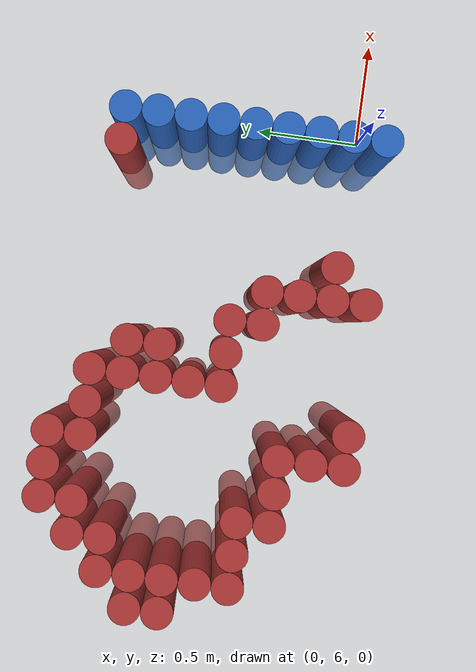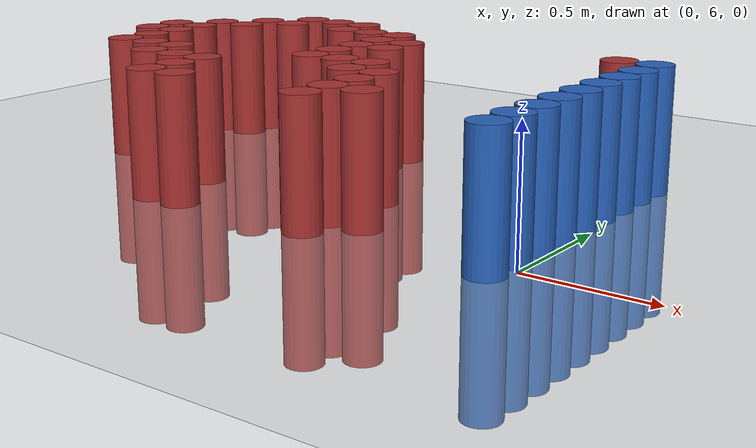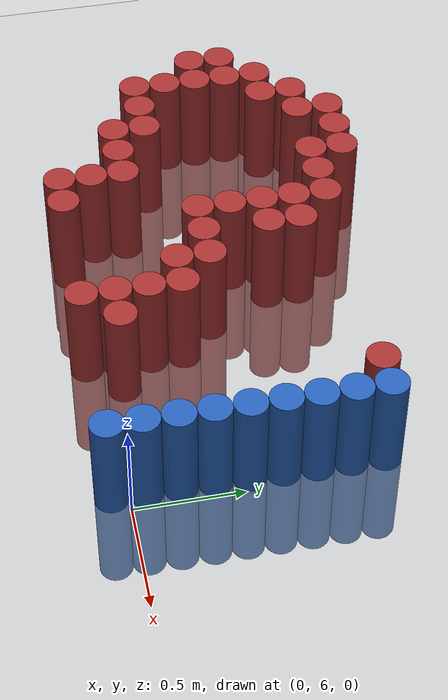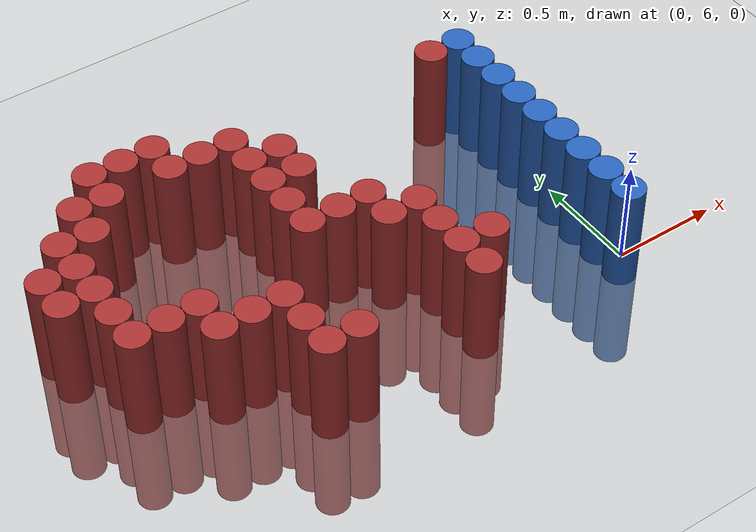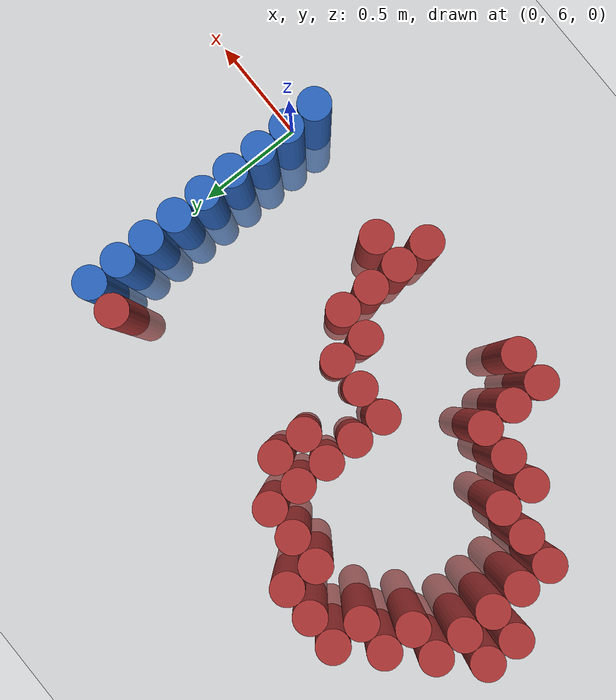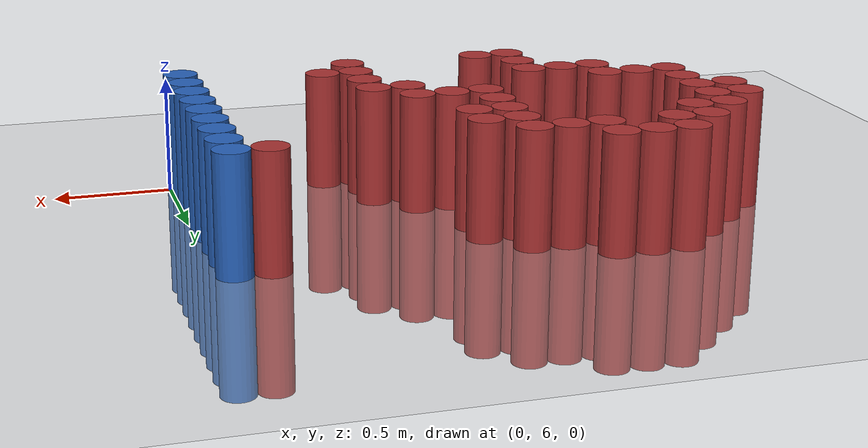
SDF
<sdf version="1.6">
 <world name="default">
  <model name="ground_plane">
   <static>1</static>
   <link name="link">
    <collision name="collision">
     <geometry><plane><normal>0 0 1</normal><size>100 100</size></plane></geometry>
     <surface><friction><ode><mu>100</mu><mu2>50</mu2></ode></friction></surface>
    </collision>
    <visual name="visual">
     <cast_shadows>0</cast_shadows>
     <geometry><plane><normal>0 0 1</normal><size>100 100</size></plane></geometry>
     <material>
      <script><uri>file://media/materials/scripts/gazebo.material</uri><name>Gazebo/Grey</name></script>
     </material>
    </visual>
   </link>
  </model>
  <model name="unit_cylinder_176">
   <static>1</static>
   <pose>-2.325000 6.675000 0.000000 0.000000 0.000000 0.000000</pose>
   <link name="link">
    <inertial>
     <mass>1</mass>
     <inertia><ixx>0.145833</ixx><ixy>0</ixy><ixz>0</ixz><iyy>0.145833</iyy><iyz>0</iyz><izz>0.125</izz></inertia>
    </inertial>
    <collision name="collision">
     <geometry><cylinder><radius>0.075000</radius><length>1</length></cylinder></geometry>
    </collision>
    <visual name="visual">
     <geometry><cylinder><radius>0.075000</radius><length>1</length></cylinder></geometry>
     <material>
      <ambient>0.648000 0.192000 0.192000 1</ambient>
      <diffuse>0.648000 0.192000 0.192000 1</diffuse>
     </material>
     <material>
      <script><name>Gazebo/Grey</name><uri>file://media/materials/scripts/gazebo.material</uri></script>
     </material>
    </visual>
   </link>
  </model>
  <model name="unit_cylinder_177">
   <static>1</static>
   <pose>-2.325000 6.825000 0.000000 0.000000 0.000000 0.000000</pose>
   <link name="link">
    <inertial>
     <mass>1</mass>
     <inertia><ixx>0.145833</ixx><ixy>0</ixy><ixz>0</ixz><iyy>0.145833</iyy><iyz>0</iyz><izz>0.125</izz></inertia>
    </inertial>
    <collision name="collision">
     <geometry><cylinder><radius>0.075000</radius><length>1</length></cylinder></geometry>
    </collision>
    <visual name="visual">
     <geometry><cylinder><radius>0.075000</radius><length>1</length></cylinder></geometry>
     <material>
      <ambient>0.648000 0.192000 0.192000 1</ambient>
      <diffuse>0.648000 0.192000 0.192000 1</diffuse>
     </material>
     <material>
      <script><name>Gazebo/Grey</name><uri>file://media/materials/scripts/gazebo.material</uri></script>
     </material>
    </visual>
   </link>
  </model>
  <model name="unit_cylinder_178">
   <static>1</static>
   <pose>-2.175000 6.375000 0.000000 0.000000 0.000000 0.000000</pose>
   <link name="link">
    <inertial>
     <mass>1</mass>
     <inertia><ixx>0.145833</ixx><ixy>0</ixy><ixz>0</ixz><iyy>0.145833</iyy><iyz>0</iyz><izz>0.125</izz></inertia>
    </inertial>
    <collision name="collision">
     <geometry><cylinder><radius>0.075000</radius><length>1</length></cylinder></geometry>
    </collision>
    <visual name="visual">
     <geometry><cylinder><radius>0.075000</radius><length>1</length></cylinder></geometry>
     <material>
      <ambient>0.648000 0.192000 0.192000 1</ambient>
      <diffuse>0.648000 0.192000 0.192000 1</diffuse>
     </material>
     <material>
      <script><name>Gazebo/Grey</name><uri>file://media/materials/scripts/gazebo.material</uri></script>
     </material>
    </visual>
   </link>
  </model>
  <model name="unit_cylinder_179">
   <static>1</static>
   <pose>-2.175000 6.525000 0.000000 0.000000 0.000000 0.000000</pose>
   <link name="link">
    <inertial>
     <mass>1</mass>
     <inertia><ixx>0.145833</ixx><ixy>0</ixy><ixz>0</ixz><iyy>0.145833</iyy><iyz>0</iyz><izz>0.125</izz></inertia>
    </inertial>
    <collision name="collision">
     <geometry><cylinder><radius>0.075000</radius><length>1</length></cylinder></geometry>
    </collision>
    <visual name="visual">
     <geometry><cylinder><radius>0.075000</radius><length>1</length></cylinder></geometry>
     <material>
      <ambient>0.648000 0.192000 0.192000 1</ambient>
      <diffuse>0.648000 0.192000 0.192000 1</diffuse>
     </material>
     <material>
      <script><name>Gazebo/Grey</name><uri>file://media/materials/scripts/gazebo.material</uri></script>
     </material>
    </visual>
   </link>
  </model>
  <model name="unit_cylinder_180">
   <static>1</static>
   <pose>-2.175000 6.675000 0.000000 0.000000 0.000000 0.000000</pose>
   <link name="link">
    <inertial>
     <mass>1</mass>
     <inertia><ixx>0.145833</ixx><ixy>0</ixy><ixz>0</ixz><iyy>0.145833</iyy><iyz>0</iyz><izz>0.125</izz></inertia>
    </inertial>
    <collision name="collision">
     <geometry><cylinder><radius>0.075000</radius><length>1</length></cylinder></geometry>
    </collision>
    <visual name="visual">
     <geometry><cylinder><radius>0.075000</radius><length>1</length></cylinder></geometry>
     <material>
      <ambient>0.648000 0.192000 0.192000 1</ambient>
      <diffuse>0.648000 0.192000 0.192000 1</diffuse>
     </material>
     <material>
      <script><name>Gazebo/Grey</name><uri>file://media/materials/scripts/gazebo.material</uri></script>
     </material>
    </visual>
   </link>
  </model>
  <model name="unit_cylinder_181">
   <static>1</static>
   <pose>-2.175000 6.825000 0.000000 0.000000 0.000000 0.000000</pose>
   <link name="link">
    <inertial>
     <mass>1</mass>
     <inertia><ixx>0.145833</ixx><ixy>0</ixy><ixz>0</ixz><iyy>0.145833</iyy><iyz>0</iyz><izz>0.125</izz></inertia>
    </inertial>
    <collision name="collision">
     <geometry><cylinder><radius>0.075000</radius><length>1</length></cylinder></geometry>
    </collision>
    <visual name="visual">
     <geometry><cylinder><radius>0.075000</radius><length>1</length></cylinder></geometry>
     <material>
      <ambient>0.648000 0.192000 0.192000 1</ambient>
      <diffuse>0.648000 0.192000 0.192000 1</diffuse>
     </material>
     <material>
      <script><name>Gazebo/Grey</name><uri>file://media/materials/scripts/gazebo.material</uri></script>
     </material>
    </visual>
   </link>
  </model>
  <model name="unit_cylinder_182">
   <static>1</static>
   <pose>-2.175000 6.975000 0.000000 0.000000 0.000000 0.000000</pose>
   <link name="link">
    <inertial>
     <mass>1</mass>
     <inertia><ixx>0.145833</ixx><ixy>0</ixy><ixz>0</ixz><iyy>0.145833</iyy><iyz>0</iyz><izz>0.125</izz></inertia>
    </inertial>
    <collision name="collision">
     <geometry><cylinder><radius>0.075000</radius><length>1</length></cylinder></geometry>
    </collision>
    <visual name="visual">
     <geometry><cylinder><radius>0.075000</radius><length>1</length></cylinder></geometry>
     <material>
      <ambient>0.648000 0.192000 0.192000 1</ambient>
      <diffuse>0.648000 0.192000 0.192000 1</diffuse>
     </material>
     <material>
      <script><name>Gazebo/Grey</name><uri>file://media/materials/scripts/gazebo.material</uri></script>
     </material>
    </visual>
   </link>
  </model>
  <model name="unit_cylinder_183">
   <static>1</static>
   <pose>-2.025000 6.375000 0.000000 0.000000 0.000000 0.000000</pose>
   <link name="link">
    <inertial>
     <mass>1</mass>
     <inertia><ixx>0.145833</ixx><ixy>0</ixy><ixz>0</ixz><iyy>0.145833</iyy><iyz>0</iyz><izz>0.125</izz></inertia>
    </inertial>
    <collision name="collision">
     <geometry><cylinder><radius>0.075000</radius><length>1</length></cylinder></geometry>
    </collision>
    <visual name="visual">
     <geometry><cylinder><radius>0.075000</radius><length>1</length></cylinder></geometry>
     <material>
      <ambient>0.648000 0.192000 0.192000 1</ambient>
      <diffuse>0.648000 0.192000 0.192000 1</diffuse>
     </material>
     <material>
      <script><name>Gazebo/Grey</name><uri>file://media/materials/scripts/gazebo.material</uri></script>
     </material>
    </visual>
   </link>
  </model>
  <model name="unit_cylinder_184">
   <static>1</static>
   <pose>-2.025000 6.975000 0.000000 0.000000 0.000000 0.000000</pose>
   <link name="link">
    <inertial>
     <mass>1</mass>
     <inertia><ixx>0.145833</ixx><ixy>0</ixy><ixz>0</ixz><iyy>0.145833</iyy><iyz>0</iyz><izz>0.125</izz></inertia>
    </inertial>
    <collision name="collision">
     <geometry><cylinder><radius>0.075000</radius><length>1</length></cylinder></geometry>
    </collision>
    <visual name="visual">
     <geometry><cylinder><radius>0.075000</radius><length>1</length></cylinder></geometry>
     <material>
      <ambient>0.648000 0.192000 0.192000 1</ambient>
      <diffuse>0.648000 0.192000 0.192000 1</diffuse>
     </material>
     <material>
      <script><name>Gazebo/Grey</name><uri>file://media/materials/scripts/gazebo.material</uri></script>
     </material>
    </visual>
   </link>
  </model>
  <model name="unit_cylinder_185">
   <static>1</static>
   <pose>-2.025000 7.125000 0.000000 0.000000 0.000000 0.000000</pose>
   <link name="link">
    <inertial>
     <mass>1</mass>
     <inertia><ixx>0.145833</ixx><ixy>0</ixy><ixz>0</ixz><iyy>0.145833</iyy><iyz>0</iyz><izz>0.125</izz></inertia>
    </inertial>
    <collision name="collision">
     <geometry><cylinder><radius>0.075000</radius><length>1</length></cylinder></geometry>
    </collision>
    <visual name="visual">
     <geometry><cylinder><radius>0.075000</radius><length>1</length></cylinder></geometry>
     <material>
      <ambient>0.648000 0.192000 0.192000 1</ambient>
      <diffuse>0.648000 0.192000 0.192000 1</diffuse>
     </material>
     <material>
      <script><name>Gazebo/Grey</name><uri>file://media/materials/scripts/gazebo.material</uri></script>
     </material>
    </visual>
   </link>
  </model>
  <model name="unit_cylinder_186">
   <static>1</static>
   <pose>-1.875000 6.225000 0.000000 0.000000 0.000000 0.000000</pose>
   <link name="link">
    <inertial>
     <mass>1</mass>
     <inertia><ixx>0.145833</ixx><ixy>0</ixy><ixz>0</ixz><iyy>0.145833</iyy><iyz>0</iyz><izz>0.125</izz></inertia>
    </inertial>
    <collision name="collision">
     <geometry><cylinder><radius>0.075000</radius><length>1</length></cylinder></geometry>
    </collision>
    <visual name="visual">
     <geometry><cylinder><radius>0.075000</radius><length>1</length></cylinder></geometry>
     <material>
      <ambient>0.648000 0.192000 0.192000 1</ambient>
      <diffuse>0.648000 0.192000 0.192000 1</diffuse>
     </material>
     <material>
      <script><name>Gazebo/Grey</name><uri>file://media/materials/scripts/gazebo.material</uri></script>
     </material>
    </visual>
   </link>
  </model>
  <model name="unit_cylinder_187">
   <static>1</static>
   <pose>-1.875000 6.375000 0.000000 0.000000 0.000000 0.000000</pose>
   <link name="link">
    <inertial>
     <mass>1</mass>
     <inertia><ixx>0.145833</ixx><ixy>0</ixy><ixz>0</ixz><iyy>0.145833</iyy><iyz>0</iyz><izz>0.125</izz></inertia>
    </inertial>
    <collision name="collision">
     <geometry><cylinder><radius>0.075000</radius><length>1</length></cylinder></geometry>
    </collision>
    <visual name="visual">
     <geometry><cylinder><radius>0.075000</radius><length>1</length></cylinder></geometry>
     <material>
      <ambient>0.648000 0.192000 0.192000 1</ambient>
      <diffuse>0.648000 0.192000 0.192000 1</diffuse>
     </material>
     <material>
      <script><name>Gazebo/Grey</name><uri>file://media/materials/scripts/gazebo.material</uri></script>
     </material>
    </visual>
   </link>
  </model>
  <model name="unit_cylinder_188">
   <static>1</static>
   <pose>-1.875000 7.125000 0.000000 0.000000 0.000000 0.000000</pose>
   <link name="link">
    <inertial>
     <mass>1</mass>
     <inertia><ixx>0.145833</ixx><ixy>0</ixy><ixz>0</ixz><iyy>0.145833</iyy><iyz>0</iyz><izz>0.125</izz></inertia>
    </inertial>
    <collision name="collision">
     <geometry><cylinder><radius>0.075000</radius><length>1</length></cylinder></geometry>
    </collision>
    <visual name="visual">
     <geometry><cylinder><radius>0.075000</radius><length>1</length></cylinder></geometry>
     <material>
      <ambient>0.648000 0.192000 0.192000 1</ambient>
      <diffuse>0.648000 0.192000 0.192000 1</diffuse>
     </material>
     <material>
      <script><name>Gazebo/Grey</name><uri>file://media/materials/scripts/gazebo.material</uri></script>
     </material>
    </visual>
   </link>
  </model>
  <model name="unit_cylinder_189">
   <static>1</static>
   <pose>-1.875000 7.275000 0.000000 0.000000 0.000000 0.000000</pose>
   <link name="link">
    <inertial>
     <mass>1</mass>
     <inertia><ixx>0.145833</ixx><ixy>0</ixy><ixz>0</ixz><iyy>0.145833</iyy><iyz>0</iyz><izz>0.125</izz></inertia>
    </inertial>
    <collision name="collision">
     <geometry><cylinder><radius>0.075000</radius><length>1</length></cylinder></geometry>
    </collision>
    <visual name="visual">
     <geometry><cylinder><radius>0.075000</radius><length>1</length></cylinder></geometry>
     <material>
      <ambient>0.648000 0.192000 0.192000 1</ambient>
      <diffuse>0.648000 0.192000 0.192000 1</diffuse>
     </material>
     <material>
      <script><name>Gazebo/Grey</name><uri>file://media/materials/scripts/gazebo.material</uri></script>
     </material>
    </visual>
   </link>
  </model>
  <model name="unit_cylinder_190">
   <static>1</static>
   <pose>-1.725000 6.225000 0.000000 0.000000 0.000000 0.000000</pose>
   <link name="link">
    <inertial>
     <mass>1</mass>
     <inertia><ixx>0.145833</ixx><ixy>0</ixy><ixz>0</ixz><iyy>0.145833</iyy><iyz>0</iyz><izz>0.125</izz></inertia>
    </inertial>
    <collision name="collision">
     <geometry><cylinder><radius>0.075000</radius><length>1</length></cylinder></geometry>
    </collision>
    <visual name="visual">
     <geometry><cylinder><radius>0.075000</radius><length>1</length></cylinder></geometry>
     <material>
      <ambient>0.648000 0.192000 0.192000 1</ambient>
      <diffuse>0.648000 0.192000 0.192000 1</diffuse>
     </material>
     <material>
      <script><name>Gazebo/Grey</name><uri>file://media/materials/scripts/gazebo.material</uri></script>
     </material>
    </visual>
   </link>
  </model>
  <model name="unit_cylinder_191">
   <static>1</static>
   <pose>-1.725000 7.275000 0.000000 0.000000 0.000000 0.000000</pose>
   <link name="link">
    <inertial>
     <mass>1</mass>
     <inertia><ixx>0.145833</ixx><ixy>0</ixy><ixz>0</ixz><iyy>0.145833</iyy><iyz>0</iyz><izz>0.125</izz></inertia>
    </inertial>
    <collision name="collision">
     <geometry><cylinder><radius>0.075000</radius><length>1</length></cylinder></geometry>
    </collision>
    <visual name="visual">
     <geometry><cylinder><radius>0.075000</radius><length>1</length></cylinder></geometry>
     <material>
      <ambient>0.648000 0.192000 0.192000 1</ambient>
      <diffuse>0.648000 0.192000 0.192000 1</diffuse>
     </material>
     <material>
      <script><name>Gazebo/Grey</name><uri>file://media/materials/scripts/gazebo.material</uri></script>
     </material>
    </visual>
   </link>
  </model>
  <model name="unit_cylinder_192">
   <static>1</static>
   <pose>-1.575000 5.925000 0.000000 0.000000 0.000000 0.000000</pose>
   <link name="link">
    <inertial>
     <mass>1</mass>
     <inertia><ixx>0.145833</ixx><ixy>0</ixy><ixz>0</ixz><iyy>0.145833</iyy><iyz>0</iyz><izz>0.125</izz></inertia>
    </inertial>
    <collision name="collision">
     <geometry><cylinder><radius>0.075000</radius><length>1</length></cylinder></geometry>
    </collision>
    <visual name="visual">
     <geometry><cylinder><radius>0.075000</radius><length>1</length></cylinder></geometry>
     <material>
      <ambient>0.648000 0.192000 0.192000 1</ambient>
      <diffuse>0.648000 0.192000 0.192000 1</diffuse>
     </material>
     <material>
      <script><name>Gazebo/Grey</name><uri>file://media/materials/scripts/gazebo.material</uri></script>
     </material>
    </visual>
   </link>
  </model>
  <model name="unit_cylinder_193">
   <static>1</static>
   <pose>-1.575000 6.075000 0.000000 0.000000 0.000000 0.000000</pose>
   <link name="link">
    <inertial>
     <mass>1</mass>
     <inertia><ixx>0.145833</ixx><ixy>0</ixy><ixz>0</ixz><iyy>0.145833</iyy><iyz>0</iyz><izz>0.125</izz></inertia>
    </inertial>
    <collision name="collision">
     <geometry><cylinder><radius>0.075000</radius><length>1</length></cylinder></geometry>
    </collision>
    <visual name="visual">
     <geometry><cylinder><radius>0.075000</radius><length>1</length></cylinder></geometry>
     <material>
      <ambient>0.648000 0.192000 0.192000 1</ambient>
      <diffuse>0.648000 0.192000 0.192000 1</diffuse>
     </material>
     <material>
      <script><name>Gazebo/Grey</name><uri>file://media/materials/scripts/gazebo.material</uri></script>
     </material>
    </visual>
   </link>
  </model>
  <model name="unit_cylinder_194">
   <static>1</static>
   <pose>-1.575000 6.225000 0.000000 0.000000 0.000000 0.000000</pose>
   <link name="link">
    <inertial>
     <mass>1</mass>
     <inertia><ixx>0.145833</ixx><ixy>0</ixy><ixz>0</ixz><iyy>0.145833</iyy><iyz>0</iyz><izz>0.125</izz></inertia>
    </inertial>
    <collision name="collision">
     <geometry><cylinder><radius>0.075000</radius><length>1</length></cylinder></geometry>
    </collision>
    <visual name="visual">
     <geometry><cylinder><radius>0.075000</radius><length>1</length></cylinder></geometry>
     <material>
      <ambient>0.648000 0.192000 0.192000 1</ambient>
      <diffuse>0.648000 0.192000 0.192000 1</diffuse>
     </material>
     <material>
      <script><name>Gazebo/Grey</name><uri>file://media/materials/scripts/gazebo.material</uri></script>
     </material>
    </visual>
   </link>
  </model>
  <model name="unit_cylinder_195">
   <static>1</static>
   <pose>-1.575000 7.125000 0.000000 0.000000 0.000000 0.000000</pose>
   <link name="link">
    <inertial>
     <mass>1</mass>
     <inertia><ixx>0.145833</ixx><ixy>0</ixy><ixz>0</ixz><iyy>0.145833</iyy><iyz>0</iyz><izz>0.125</izz></inertia>
    </inertial>
    <collision name="collision">
     <geometry><cylinder><radius>0.075000</radius><length>1</length></cylinder></geometry>
    </collision>
    <visual name="visual">
     <geometry><cylinder><radius>0.075000</radius><length>1</length></cylinder></geometry>
     <material>
      <ambient>0.648000 0.192000 0.192000 1</ambient>
      <diffuse>0.648000 0.192000 0.192000 1</diffuse>
     </material>
     <material>
      <script><name>Gazebo/Grey</name><uri>file://media/materials/scripts/gazebo.material</uri></script>
     </material>
    </visual>
   </link>
  </model>
  <model name="unit_cylinder_196">
   <static>1</static>
   <pose>-1.575000 7.275000 0.000000 0.000000 0.000000 0.000000</pose>
   <link name="link">
    <inertial>
     <mass>1</mass>
     <inertia><ixx>0.145833</ixx><ixy>0</ixy><ixz>0</ixz><iyy>0.145833</iyy><iyz>0</iyz><izz>0.125</izz></inertia>
    </inertial>
    <collision name="collision">
     <geometry><cylinder><radius>0.075000</radius><length>1</length></cylinder></geometry>
    </collision>
    <visual name="visual">
     <geometry><cylinder><radius>0.075000</radius><length>1</length></cylinder></geometry>
     <material>
      <ambient>0.648000 0.192000 0.192000 1</ambient>
      <diffuse>0.648000 0.192000 0.192000 1</diffuse>
     </material>
     <material>
      <script><name>Gazebo/Grey</name><uri>file://media/materials/scripts/gazebo.material</uri></script>
     </material>
    </visual>
   </link>
  </model>
  <model name="unit_cylinder_202">
   <static>1</static>
   <pose>-1.425000 5.925000 0.000000 0.000000 0.000000 0.000000</pose>
   <link name="link">
    <inertial>
     <mass>1</mass>
     <inertia><ixx>0.145833</ixx><ixy>0</ixy><ixz>0</ixz><iyy>0.145833</iyy><iyz>0</iyz><izz>0.125</izz></inertia>
    </inertial>
    <collision name="collision">
     <geometry><cylinder><radius>0.075000</radius><length>1</length></cylinder></geometry>
    </collision>
    <visual name="visual">
     <geometry><cylinder><radius>0.075000</radius><length>1</length></cylinder></geometry>
     <material>
      <ambient>0.648000 0.192000 0.192000 1</ambient>
      <diffuse>0.648000 0.192000 0.192000 1</diffuse>
     </material>
     <material>
      <script><name>Gazebo/Grey</name><uri>file://media/materials/scripts/gazebo.material</uri></script>
     </material>
    </visual>
   </link>
  </model>
  <model name="unit_cylinder_203">
   <static>1</static>
   <pose>-1.425000 7.125000 0.000000 0.000000 0.000000 0.000000</pose>
   <link name="link">
    <inertial>
     <mass>1</mass>
     <inertia><ixx>0.145833</ixx><ixy>0</ixy><ixz>0</ixz><iyy>0.145833</iyy><iyz>0</iyz><izz>0.125</izz></inertia>
    </inertial>
    <collision name="collision">
     <geometry><cylinder><radius>0.075000</radius><length>1</length></cylinder></geometry>
    </collision>
    <visual name="visual">
     <geometry><cylinder><radius>0.075000</radius><length>1</length></cylinder></geometry>
     <material>
      <ambient>0.648000 0.192000 0.192000 1</ambient>
      <diffuse>0.648000 0.192000 0.192000 1</diffuse>
     </material>
     <material>
      <script><name>Gazebo/Grey</name><uri>file://media/materials/scripts/gazebo.material</uri></script>
     </material>
    </visual>
   </link>
  </model>
  <model name="unit_cylinder_205">
   <static>1</static>
   <pose>-1.275000 6.525000 0.000000 0.000000 0.000000 0.000000</pose>
   <link name="link">
    <inertial>
     <mass>1</mass>
     <inertia><ixx>0.145833</ixx><ixy>0</ixy><ixz>0</ixz><iyy>0.145833</iyy><iyz>0</iyz><izz>0.125</izz></inertia>
    </inertial>
    <collision name="collision">
     <geometry><cylinder><radius>0.075000</radius><length>1</length></cylinder></geometry>
    </collision>
    <visual name="visual">
     <geometry><cylinder><radius>0.075000</radius><length>1</length></cylinder></geometry>
     <material>
      <ambient>0.648000 0.192000 0.192000 1</ambient>
      <diffuse>0.648000 0.192000 0.192000 1</diffuse>
     </material>
     <material>
      <script><name>Gazebo/Grey</name><uri>file://media/materials/scripts/gazebo.material</uri></script>
     </material>
    </visual>
   </link>
  </model>
  <model name="unit_cylinder_206">
   <static>1</static>
   <pose>-1.275000 6.675000 0.000000 0.000000 0.000000 0.000000</pose>
   <link name="link">
    <inertial>
     <mass>1</mass>
     <inertia><ixx>0.145833</ixx><ixy>0</ixy><ixz>0</ixz><iyy>0.145833</iyy><iyz>0</iyz><izz>0.125</izz></inertia>
    </inertial>
    <collision name="collision">
     <geometry><cylinder><radius>0.075000</radius><length>1</length></cylinder></geometry>
    </collision>
    <visual name="visual">
     <geometry><cylinder><radius>0.075000</radius><length>1</length></cylinder></geometry>
     <material>
      <ambient>0.648000 0.192000 0.192000 1</ambient>
      <diffuse>0.648000 0.192000 0.192000 1</diffuse>
     </material>
     <material>
      <script><name>Gazebo/Grey</name><uri>file://media/materials/scripts/gazebo.material</uri></script>
     </material>
    </visual>
   </link>
  </model>
  <model name="unit_cylinder_207">
   <static>1</static>
   <pose>-1.275000 6.825000 0.000000 0.000000 0.000000 0.000000</pose>
   <link name="link">
    <inertial>
     <mass>1</mass>
     <inertia><ixx>0.145833</ixx><ixy>0</ixy><ixz>0</ixz><iyy>0.145833</iyy><iyz>0</iyz><izz>0.125</izz></inertia>
    </inertial>
    <collision name="collision">
     <geometry><cylinder><radius>0.075000</radius><length>1</length></cylinder></geometry>
    </collision>
    <visual name="visual">
     <geometry><cylinder><radius>0.075000</radius><length>1</length></cylinder></geometry>
     <material>
      <ambient>0.648000 0.192000 0.192000 1</ambient>
      <diffuse>0.648000 0.192000 0.192000 1</diffuse>
     </material>
     <material>
      <script><name>Gazebo/Grey</name><uri>file://media/materials/scripts/gazebo.material</uri></script>
     </material>
    </visual>
   </link>
  </model>
  <model name="unit_cylinder_208">
   <static>1</static>
   <pose>-1.275000 6.975000 0.000000 0.000000 0.000000 0.000000</pose>
   <link name="link">
    <inertial>
     <mass>1</mass>
     <inertia><ixx>0.145833</ixx><ixy>0</ixy><ixz>0</ixz><iyy>0.145833</iyy><iyz>0</iyz><izz>0.125</izz></inertia>
    </inertial>
    <collision name="collision">
     <geometry><cylinder><radius>0.075000</radius><length>1</length></cylinder></geometry>
    </collision>
    <visual name="visual">
     <geometry><cylinder><radius>0.075000</radius><length>1</length></cylinder></geometry>
     <material>
      <ambient>0.648000 0.192000 0.192000 1</ambient>
      <diffuse>0.648000 0.192000 0.192000 1</diffuse>
     </material>
     <material>
      <script><name>Gazebo/Grey</name><uri>file://media/materials/scripts/gazebo.material</uri></script>
     </material>
    </visual>
   </link>
  </model>
  <model name="unit_cylinder_209">
   <static>1</static>
   <pose>-1.275000 7.125000 0.000000 0.000000 0.000000 0.000000</pose>
   <link name="link">
    <inertial>
     <mass>1</mass>
     <inertia><ixx>0.145833</ixx><ixy>0</ixy><ixz>0</ixz><iyy>0.145833</iyy><iyz>0</iyz><izz>0.125</izz></inertia>
    </inertial>
    <collision name="collision">
     <geometry><cylinder><radius>0.075000</radius><length>1</length></cylinder></geometry>
    </collision>
    <visual name="visual">
     <geometry><cylinder><radius>0.075000</radius><length>1</length></cylinder></geometry>
     <material>
      <ambient>0.648000 0.192000 0.192000 1</ambient>
      <diffuse>0.648000 0.192000 0.192000 1</diffuse>
     </material>
     <material>
      <script><name>Gazebo/Grey</name><uri>file://media/materials/scripts/gazebo.material</uri></script>
     </material>
    </visual>
   </link>
  </model>
  <model name="unit_cylinder_211">
   <static>1</static>
   <pose>-1.125000 6.525000 0.000000 0.000000 0.000000 0.000000</pose>
   <link name="link">
    <inertial>
     <mass>1</mass>
     <inertia><ixx>0.145833</ixx><ixy>0</ixy><ixz>0</ixz><iyy>0.145833</iyy><iyz>0</iyz><izz>0.125</izz></inertia>
    </inertial>
    <collision name="collision">
     <geometry><cylinder><radius>0.075000</radius><length>1</length></cylinder></geometry>
    </collision>
    <visual name="visual">
     <geometry><cylinder><radius>0.075000</radius><length>1</length></cylinder></geometry>
     <material>
      <ambient>0.648000 0.192000 0.192000 1</ambient>
      <diffuse>0.648000 0.192000 0.192000 1</diffuse>
     </material>
     <material>
      <script><name>Gazebo/Grey</name><uri>file://media/materials/scripts/gazebo.material</uri></script>
     </material>
    </visual>
   </link>
  </model>
  <model name="unit_cylinder_212">
   <static>1</static>
   <pose>-1.125000 6.825000 0.000000 0.000000 0.000000 0.000000</pose>
   <link name="link">
    <inertial>
     <mass>1</mass>
     <inertia><ixx>0.145833</ixx><ixy>0</ixy><ixz>0</ixz><iyy>0.145833</iyy><iyz>0</iyz><izz>0.125</izz></inertia>
    </inertial>
    <collision name="collision">
     <geometry><cylinder><radius>0.075000</radius><length>1</length></cylinder></geometry>
    </collision>
    <visual name="visual">
     <geometry><cylinder><radius>0.075000</radius><length>1</length></cylinder></geometry>
     <material>
      <ambient>0.648000 0.192000 0.192000 1</ambient>
      <diffuse>0.648000 0.192000 0.192000 1</diffuse>
     </material>
     <material>
      <script><name>Gazebo/Grey</name><uri>file://media/materials/scripts/gazebo.material</uri></script>
     </material>
    </visual>
   </link>
  </model>
  <model name="unit_cylinder_213">
   <static>1</static>
   <pose>-1.125000 6.975000 0.000000 0.000000 0.000000 0.000000</pose>
   <link name="link">
    <inertial>
     <mass>1</mass>
     <inertia><ixx>0.145833</ixx><ixy>0</ixy><ixz>0</ixz><iyy>0.145833</iyy><iyz>0</iyz><izz>0.125</izz></inertia>
    </inertial>
    <collision name="collision">
     <geometry><cylinder><radius>0.075000</radius><length>1</length></cylinder></geometry>
    </collision>
    <visual name="visual">
     <geometry><cylinder><radius>0.075000</radius><length>1</length></cylinder></geometry>
     <material>
      <ambient>0.648000 0.192000 0.192000 1</ambient>
      <diffuse>0.648000 0.192000 0.192000 1</diffuse>
     </material>
     <material>
      <script><name>Gazebo/Grey</name><uri>file://media/materials/scripts/gazebo.material</uri></script>
     </material>
    </visual>
   </link>
  </model>
  <model name="unit_cylinder_217">
   <static>1</static>
   <pose>-0.975000 6.375000 0.000000 0.000000 0.000000 0.000000</pose>
   <link name="link">
    <inertial>
     <mass>1</mass>
     <inertia><ixx>0.145833</ixx><ixy>0</ixy><ixz>0</ixz><iyy>0.145833</iyy><iyz>0</iyz><izz>0.125</izz></inertia>
    </inertial>
    <collision name="collision">
     <geometry><cylinder><radius>0.075000</radius><length>1</length></cylinder></geometry>
    </collision>
    <visual name="visual">
     <geometry><cylinder><radius>0.075000</radius><length>1</length></cylinder></geometry>
     <material>
      <ambient>0.648000 0.192000 0.192000 1</ambient>
      <diffuse>0.648000 0.192000 0.192000 1</diffuse>
     </material>
     <material>
      <script><name>Gazebo/Grey</name><uri>file://media/materials/scripts/gazebo.material</uri></script>
     </material>
    </visual>
   </link>
  </model>
  <model name="unit_cylinder_218">
   <static>1</static>
   <pose>-0.975000 6.525000 0.000000 0.000000 0.000000 0.000000</pose>
   <link name="link">
    <inertial>
     <mass>1</mass>
     <inertia><ixx>0.145833</ixx><ixy>0</ixy><ixz>0</ixz><iyy>0.145833</iyy><iyz>0</iyz><izz>0.125</izz></inertia>
    </inertial>
    <collision name="collision">
     <geometry><cylinder><radius>0.075000</radius><length>1</length></cylinder></geometry>
    </collision>
    <visual name="visual">
     <geometry><cylinder><radius>0.075000</radius><length>1</length></cylinder></geometry>
     <material>
      <ambient>0.648000 0.192000 0.192000 1</ambient>
      <diffuse>0.648000 0.192000 0.192000 1</diffuse>
     </material>
     <material>
      <script><name>Gazebo/Grey</name><uri>file://media/materials/scripts/gazebo.material</uri></script>
     </material>
    </visual>
   </link>
  </model>
  <model name="unit_cylinder_226">
   <static>1</static>
   <pose>-0.825000 5.925000 0.000000 0.000000 0.000000 0.000000</pose>
   <link name="link">
    <inertial>
     <mass>1</mass>
     <inertia><ixx>0.145833</ixx><ixy>0</ixy><ixz>0</ixz><iyy>0.145833</iyy><iyz>0</iyz><izz>0.125</izz></inertia>
    </inertial>
    <collision name="collision">
     <geometry><cylinder><radius>0.075000</radius><length>1</length></cylinder></geometry>
    </collision>
    <visual name="visual">
     <geometry><cylinder><radius>0.075000</radius><length>1</length></cylinder></geometry>
     <material>
      <ambient>0.648000 0.192000 0.192000 1</ambient>
      <diffuse>0.648000 0.192000 0.192000 1</diffuse>
     </material>
     <material>
      <script><name>Gazebo/Grey</name><uri>file://media/materials/scripts/gazebo.material</uri></script>
     </material>
    </visual>
   </link>
  </model>
  <model name="unit_cylinder_227">
   <static>1</static>
   <pose>-0.825000 6.075000 0.000000 0.000000 0.000000 0.000000</pose>
   <link name="link">
    <inertial>
     <mass>1</mass>
     <inertia><ixx>0.145833</ixx><ixy>0</ixy><ixz>0</ixz><iyy>0.145833</iyy><iyz>0</iyz><izz>0.125</izz></inertia>
    </inertial>
    <collision name="collision">
     <geometry><cylinder><radius>0.075000</radius><length>1</length></cylinder></geometry>
    </collision>
    <visual name="visual">
     <geometry><cylinder><radius>0.075000</radius><length>1</length></cylinder></geometry>
     <material>
      <ambient>0.648000 0.192000 0.192000 1</ambient>
      <diffuse>0.648000 0.192000 0.192000 1</diffuse>
     </material>
     <material>
      <script><name>Gazebo/Grey</name><uri>file://media/materials/scripts/gazebo.material</uri></script>
     </material>
    </visual>
   </link>
  </model>
  <model name="unit_cylinder_228">
   <static>1</static>
   <pose>-0.825000 6.225000 0.000000 0.000000 0.000000 0.000000</pose>
   <link name="link">
    <inertial>
     <mass>1</mass>
     <inertia><ixx>0.145833</ixx><ixy>0</ixy><ixz>0</ixz><iyy>0.145833</iyy><iyz>0</iyz><izz>0.125</izz></inertia>
    </inertial>
    <collision name="collision">
     <geometry><cylinder><radius>0.075000</radius><length>1</length></cylinder></geometry>
    </collision>
    <visual name="visual">
     <geometry><cylinder><radius>0.075000</radius><length>1</length></cylinder></geometry>
     <material>
      <ambient>0.648000 0.192000 0.192000 1</ambient>
      <diffuse>0.648000 0.192000 0.192000 1</diffuse>
     </material>
     <material>
      <script><name>Gazebo/Grey</name><uri>file://media/materials/scripts/gazebo.material</uri></script>
     </material>
    </visual>
   </link>
  </model>
  <model name="unit_cylinder_229">
   <static>1</static>
   <pose>-0.825000 6.375000 0.000000 0.000000 0.000000 0.000000</pose>
   <link name="link">
    <inertial>
     <mass>1</mass>
     <inertia><ixx>0.145833</ixx><ixy>0</ixy><ixz>0</ixz><iyy>0.145833</iyy><iyz>0</iyz><izz>0.125</izz></inertia>
    </inertial>
    <collision name="collision">
     <geometry><cylinder><radius>0.075000</radius><length>1</length></cylinder></geometry>
    </collision>
    <visual name="visual">
     <geometry><cylinder><radius>0.075000</radius><length>1</length></cylinder></geometry>
     <material>
      <ambient>0.648000 0.192000 0.192000 1</ambient>
      <diffuse>0.648000 0.192000 0.192000 1</diffuse>
     </material>
     <material>
      <script><name>Gazebo/Grey</name><uri>file://media/materials/scripts/gazebo.material</uri></script>
     </material>
    </visual>
   </link>
  </model>
  <model name="unit_cylinder_237">
   <static>1</static>
   <pose>-0.675000 6.075000 0.000000 0.000000 0.000000 0.000000</pose>
   <link name="link">
    <inertial>
     <mass>1</mass>
     <inertia><ixx>0.145833</ixx><ixy>0</ixy><ixz>0</ixz><iyy>0.145833</iyy><iyz>0</iyz><izz>0.125</izz></inertia>
    </inertial>
    <collision name="collision">
     <geometry><cylinder><radius>0.075000</radius><length>1</length></cylinder></geometry>
    </collision>
    <visual name="visual">
     <geometry><cylinder><radius>0.075000</radius><length>1</length></cylinder></geometry>
     <material>
      <ambient>0.648000 0.192000 0.192000 1</ambient>
      <diffuse>0.648000 0.192000 0.192000 1</diffuse>
     </material>
     <material>
      <script><name>Gazebo/Grey</name><uri>file://media/materials/scripts/gazebo.material</uri></script>
     </material>
    </visual>
   </link>
  </model>
  <model name="unit_cylinder_259">
   <static>1</static>
   <pose>-0.225000 7.125000 0.000000 0.000000 0.000000 0.000000</pose>
   <link name="link">
    <inertial>
     <mass>1</mass>
     <inertia><ixx>0.145833</ixx><ixy>0</ixy><ixz>0</ixz><iyy>0.145833</iyy><iyz>0</iyz><izz>0.125</izz></inertia>
    </inertial>
    <collision name="collision">
     <geometry><cylinder><radius>0.075000</radius><length>1</length></cylinder></geometry>
    </collision>
    <visual name="visual">
     <geometry><cylinder><radius>0.075000</radius><length>1</length></cylinder></geometry>
     <material>
      <ambient>0.648000 0.192000 0.192000 1</ambient>
      <diffuse>0.648000 0.192000 0.192000 1</diffuse>
     </material>
     <material>
      <script><name>Gazebo/Grey</name><uri>file://media/materials/scripts/gazebo.material</uri></script>
     </material>
    </visual>
   </link>
  </model>
  <model name="unit_cylinder_267">
   <static>1</static>
   <pose>-0.075000 5.925000 0.000000 0.000000 0.000000 0.000000</pose>
   <link name="link">
    <inertial>
     <mass>1</mass>
     <inertia><ixx>0.145833</ixx><ixy>0</ixy><ixz>0</ixz><iyy>0.145833</iyy><iyz>0</iyz><izz>0.125</izz></inertia>
    </inertial>
    <collision name="collision">
     <geometry><cylinder><radius>0.075000</radius><length>1</length></cylinder></geometry>
    </collision>
    <visual name="visual">
     <geometry><cylinder><radius>0.075000</radius><length>1</length></cylinder></geometry>
     <material>
      <ambient>0.152000 0.379000 0.720000 1</ambient>
      <diffuse>0.152000 0.379000 0.720000 1</diffuse>
     </material>
     <material>
      <script><name>Gazebo/Grey</name><uri>file://media/materials/scripts/gazebo.material</uri></script>
     </material>
    </visual>
   </link>
  </model>
  <model name="unit_cylinder_268">
   <static>1</static>
   <pose>-0.075000 6.075000 0.000000 0.000000 0.000000 0.000000</pose>
   <link name="link">
    <inertial>
     <mass>1</mass>
     <inertia><ixx>0.145833</ixx><ixy>0</ixy><ixz>0</ixz><iyy>0.145833</iyy><iyz>0</iyz><izz>0.125</izz></inertia>
    </inertial>
    <collision name="collision">
     <geometry><cylinder><radius>0.075000</radius><length>1</length></cylinder></geometry>
    </collision>
    <visual name="visual">
     <geometry><cylinder><radius>0.075000</radius><length>1</length></cylinder></geometry>
     <material>
      <ambient>0.152000 0.379000 0.720000 1</ambient>
      <diffuse>0.152000 0.379000 0.720000 1</diffuse>
     </material>
     <material>
      <script><name>Gazebo/Grey</name><uri>file://media/materials/scripts/gazebo.material</uri></script>
     </material>
    </visual>
   </link>
  </model>
  <model name="unit_cylinder_269">
   <static>1</static>
   <pose>-0.075000 6.225000 0.000000 0.000000 0.000000 0.000000</pose>
   <link name="link">
    <inertial>
     <mass>1</mass>
     <inertia><ixx>0.145833</ixx><ixy>0</ixy><ixz>0</ixz><iyy>0.145833</iyy><iyz>0</iyz><izz>0.125</izz></inertia>
    </inertial>
    <collision name="collision">
     <geometry><cylinder><radius>0.075000</radius><length>1</length></cylinder></geometry>
    </collision>
    <visual name="visual">
     <geometry><cylinder><radius>0.075000</radius><length>1</length></cylinder></geometry>
     <material>
      <ambient>0.152000 0.379000 0.720000 1</ambient>
      <diffuse>0.152000 0.379000 0.720000 1</diffuse>
     </material>
     <material>
      <script><name>Gazebo/Grey</name><uri>file://media/materials/scripts/gazebo.material</uri></script>
     </material>
    </visual>
   </link>
  </model>
  <model name="unit_cylinder_270">
   <static>1</static>
   <pose>-0.075000 6.375000 0.000000 0.000000 0.000000 0.000000</pose>
   <link name="link">
    <inertial>
     <mass>1</mass>
     <inertia><ixx>0.145833</ixx><ixy>0</ixy><ixz>0</ixz><iyy>0.145833</iyy><iyz>0</iyz><izz>0.125</izz></inertia>
    </inertial>
    <collision name="collision">
     <geometry><cylinder><radius>0.075000</radius><length>1</length></cylinder></geometry>
    </collision>
    <visual name="visual">
     <geometry><cylinder><radius>0.075000</radius><length>1</length></cylinder></geometry>
     <material>
      <ambient>0.152000 0.379000 0.720000 1</ambient>
      <diffuse>0.152000 0.379000 0.720000 1</diffuse>
     </material>
     <material>
      <script><name>Gazebo/Grey</name><uri>file://media/materials/scripts/gazebo.material</uri></script>
     </material>
    </visual>
   </link>
  </model>
  <model name="unit_cylinder_271">
   <static>1</static>
   <pose>-0.075000 6.525000 0.000000 0.000000 0.000000 0.000000</pose>
   <link name="link">
    <inertial>
     <mass>1</mass>
     <inertia><ixx>0.145833</ixx><ixy>0</ixy><ixz>0</ixz><iyy>0.145833</iyy><iyz>0</iyz><izz>0.125</izz></inertia>
    </inertial>
    <collision name="collision">
     <geometry><cylinder><radius>0.075000</radius><length>1</length></cylinder></geometry>
    </collision>
    <visual name="visual">
     <geometry><cylinder><radius>0.075000</radius><length>1</length></cylinder></geometry>
     <material>
      <ambient>0.152000 0.379000 0.720000 1</ambient>
      <diffuse>0.152000 0.379000 0.720000 1</diffuse>
     </material>
     <material>
      <script><name>Gazebo/Grey</name><uri>file://media/materials/scripts/gazebo.material</uri></script>
     </material>
    </visual>
   </link>
  </model>
  <model name="unit_cylinder_272">
   <static>1</static>
   <pose>-0.075000 6.675000 0.000000 0.000000 0.000000 0.000000</pose>
   <link name="link">
    <inertial>
     <mass>1</mass>
     <inertia><ixx>0.145833</ixx><ixy>0</ixy><ixz>0</ixz><iyy>0.145833</iyy><iyz>0</iyz><izz>0.125</izz></inertia>
    </inertial>
    <collision name="collision">
     <geometry><cylinder><radius>0.075000</radius><length>1</length></cylinder></geometry>
    </collision>
    <visual name="visual">
     <geometry><cylinder><radius>0.075000</radius><length>1</length></cylinder></geometry>
     <material>
      <ambient>0.152000 0.379000 0.720000 1</ambient>
      <diffuse>0.152000 0.379000 0.720000 1</diffuse>
     </material>
     <material>
      <script><name>Gazebo/Grey</name><uri>file://media/materials/scripts/gazebo.material</uri></script>
     </material>
    </visual>
   </link>
  </model>
  <model name="unit_cylinder_273">
   <static>1</static>
   <pose>-0.075000 6.825000 0.000000 0.000000 0.000000 0.000000</pose>
   <link name="link">
    <inertial>
     <mass>1</mass>
     <inertia><ixx>0.145833</ixx><ixy>0</ixy><ixz>0</ixz><iyy>0.145833</iyy><iyz>0</iyz><izz>0.125</izz></inertia>
    </inertial>
    <collision name="collision">
     <geometry><cylinder><radius>0.075000</radius><length>1</length></cylinder></geometry>
    </collision>
    <visual name="visual">
     <geometry><cylinder><radius>0.075000</radius><length>1</length></cylinder></geometry>
     <material>
      <ambient>0.152000 0.379000 0.720000 1</ambient>
      <diffuse>0.152000 0.379000 0.720000 1</diffuse>
     </material>
     <material>
      <script><name>Gazebo/Grey</name><uri>file://media/materials/scripts/gazebo.material</uri></script>
     </material>
    </visual>
   </link>
  </model>
  <model name="unit_cylinder_274">
   <static>1</static>
   <pose>-0.075000 6.975000 0.000000 0.000000 0.000000 0.000000</pose>
   <link name="link">
    <inertial>
     <mass>1</mass>
     <inertia><ixx>0.145833</ixx><ixy>0</ixy><ixz>0</ixz><iyy>0.145833</iyy><iyz>0</iyz><izz>0.125</izz></inertia>
    </inertial>
    <collision name="collision">
     <geometry><cylinder><radius>0.075000</radius><length>1</length></cylinder></geometry>
    </collision>
    <visual name="visual">
     <geometry><cylinder><radius>0.075000</radius><length>1</length></cylinder></geometry>
     <material>
      <ambient>0.152000 0.379000 0.720000 1</ambient>
      <diffuse>0.152000 0.379000 0.720000 1</diffuse>
     </material>
     <material>
      <script><name>Gazebo/Grey</name><uri>file://media/materials/scripts/gazebo.material</uri></script>
     </material>
    </visual>
   </link>
  </model>
  <model name="unit_cylinder_275">
   <static>1</static>
   <pose>-0.075000 7.125000 0.000000 0.000000 0.000000 0.000000</pose>
   <link name="link">
    <inertial>
     <mass>1</mass>
     <inertia><ixx>0.145833</ixx><ixy>0</ixy><ixz>0</ixz><iyy>0.145833</iyy><iyz>0</iyz><izz>0.125</izz></inertia>
    </inertial>
    <collision name="collision">
     <geometry><cylinder><radius>0.075000</radius><length>1</length></cylinder></geometry>
    </collision>
    <visual name="visual">
     <geometry><cylinder><radius>0.075000</radius><length>1</length></cylinder></geometry>
     <material>
      <ambient>0.152000 0.379000 0.720000 1</ambient>
      <diffuse>0.152000 0.379000 0.720000 1</diffuse>
     </material>
     <material>
      <script><name>Gazebo/Grey</name><uri>file://media/materials/scripts/gazebo.material</uri></script>
     </material>
    </visual>
   </link>
  </model>
 </world>
</sdf>
